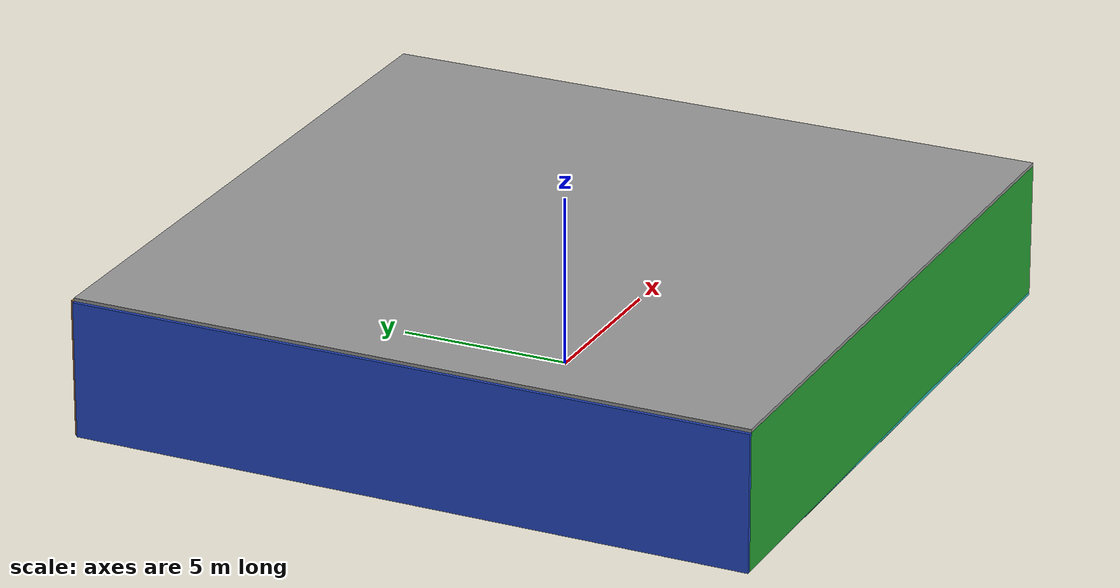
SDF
<sdf version="1.4">
 <world name="default">
  <physics type="ode">
   <max_step_size>0.001</max_step_size>
   <real_time_factor>1</real_time_factor>
   <real_time_update_rate>1000</real_time_update_rate>
   <gravity>0 0 -9.8</gravity>
  </physics>
  <scene><ambient>0.4 0.4 0.4 1</ambient><background>0.7 0.7 0.7 1</background><shadows>1</shadows></scene>
  <model name="Surrounding">
   <static>1</static>
   <link name="Ceiling">
    <collision name="Ceiling_Collision"><geometry><box><size>20 20 0.1</size></box></geometry></collision>
    <visual name="Ceiling_Visual">
     <geometry><box><size>20 20 0.1</size></box></geometry>
     <material>
      <script><uri>file://media/materials/scripts/gazebo.material</uri><name>Gazebo/GreyGradientSky</name></script>
     </material>
    </visual>
    <pose>0 0 4.05 0 0 0</pose>
   </link>
   <link name="Wall_South">
    <collision name="Wall_South_Collision">
     <geometry><box><size>20 0 4</size></box></geometry>
     <pose>0 0 2 0 -0 0</pose>
    </collision>
    <visual name="Wall_South_Visual">
     <pose>0 0 2 0 -0 0</pose>
     <geometry><box><size>20 0 4</size></box></geometry>
     <material>
      <script><uri>file://media/materials/scripts/gazebo.material</uri><name>Gazebo/GreenGlow</name></script>
     </material>
    </visual>
    <velocity_decay><linear>0</linear><angular>0</angular></velocity_decay>
    <pose>0 -10 0 0 -0 0</pose>
   </link>
   <link name="Wall_East">
    <collision name="Wall_21_Collision">
     <geometry><box><size>20 0 4</size></box></geometry>
     <pose>0 0 2 0 -0 0</pose>
    </collision>
    <visual name="Wall_21_Visual">
     <pose>0 0 2 0 -0 0</pose>
     <geometry><box><size>20 0 4</size></box></geometry>
     <material>
      <script><uri>file://media/materials/scripts/gazebo.material</uri><name>Gazebo/Blue</name></script>
     </material>
    </visual>
    <velocity_decay><linear>0</linear><angular>0</angular></velocity_decay>
    <pose>10 0 0 0 -0 1.5708</pose>
   </link>
   <link name="Wall_North">
    <collision name="Wall_22_Collision">
     <geometry><box><size>20 0.2 4</size></box></geometry>
     <pose>0 0 2 0 -0 0</pose>
    </collision>
    <visual name="Wall_22_Visual">
     <pose>0 0 2 0 -0 0</pose>
     <geometry><box><size>20 0.2 4</size></box></geometry>
     <material>
      <script><uri>file://media/materials/scripts/gazebo.material</uri><name>Gazebo/WoodPallet</name></script>
     </material>
    </visual>
    <velocity_decay><linear>0</linear><angular>0</angular></velocity_decay>
    <pose>0 10 0 0 -0 0</pose>
   </link>
   <link name="Wall_West">
    <collision name="Wall_23_Collision">
     <geometry><box><size>20 0.2 4</size></box></geometry>
     <pose>0 0 2 0 -0 0</pose>
    </collision>
    <visual name="Wall_23_Visual">
     <pose>0 0 2 0 -0 0</pose>
     <geometry><box><size>20 0.2 4</size></box></geometry>
     <material>
      <script><uri>file://media/materials/scripts/gazebo.material</uri><name>Gazebo/BlueGlow</name></script>
     </material>
    </visual>
    <velocity_decay><linear>0</linear><angular>0</angular></velocity_decay>
    <pose>-10 0 0 0 0 -1.5708</pose>
   </link>
   <link name="Ground_link">
    <collision name="collision">
     <pose>0 0 .05 0 -0 0</pose>
     <geometry><box><size>20 20 0.1</size></box></geometry>
    </collision>
    <visual name="visual">
     <pose>0 0 .05 0 -0 0</pose>
     <geometry><box><size>20 20 0.1</size></box></geometry>
     <material>
      <script><uri>file://media/materials/scripts/gazebo.material</uri><name>Gazebo/TurquoiseGlow</name></script>
     </material>
    </visual>
   </link>
   <static>1</static>
  </model>
  <spherical_coordinates>
   <surface_model>EARTH_WGS84</surface_model>
   <latitude_deg>0</latitude_deg>
   <longitude_deg>0</longitude_deg>
   <elevation>0</elevation>
   <heading_deg>0</heading_deg>
  </spherical_coordinates>
  <light name="lightball_0" type="diffuse">
   <diffuse>0.8 0.8 0.8 1</diffuse>
   <specular>0.2 0.2 0.2 1</specular>
   <attenuation>
    <range>100</range>
    <constant>0.7</constant>
    <linear>0.01</linear>
    <quadratic>0.001</quadratic>
   </attenuation>
   <direction>-0.5 0.1 -0.9</direction>
   <pose>-1.81086440678 3.21722620242 2.13289346458 0 0 0</pose>
  </light>
  <light name="lightball_1" type="diffuse">
   <diffuse>0.8 0.8 0.8 1</diffuse>
   <specular>0.2 0.2 0.2 1</specular>
   <attenuation>
    <range>100</range>
    <constant>0.7</constant>
    <linear>0.01</linear>
    <quadratic>0.001</quadratic>
   </attenuation>
   <direction>-0.5 0.1 -0.9</direction>
   <pose>-6.85519795519 -5.43416564901 3.74272298076 0 0 0</pose>
  </light>
  <light name="lightball_2" type="diffuse">
   <diffuse>0.8 0.8 0.8 1</diffuse>
   <specular>0.2 0.2 0.2 1</specular>
   <attenuation>
    <range>100</range>
    <constant>0.7</constant>
    <linear>0.01</linear>
    <quadratic>0.001</quadratic>
   </attenuation>
   <direction>-0.5 0.1 -0.9</direction>
   <pose>-9.02405448959 6.94647101885 2.30600248429 0 0 0</pose>
  </light>
  <light name="lightball_3" type="diffuse">
   <diffuse>0.8 0.8 0.8 1</diffuse>
   <specular>0.2 0.2 0.2 1</specular>
   <attenuation>
    <range>100</range>
    <constant>0.7</constant>
    <linear>0.01</linear>
    <quadratic>0.001</quadratic>
   </attenuation>
   <direction>-0.5 0.1 -0.9</direction>
   <pose>9.62567072227 -1.8064295701 2.38755738929 0 0 0</pose>
  </light>
  <light name="lightball_4" type="diffuse">
   <diffuse>0.8 0.8 0.8 1</diffuse>
   <specular>0.2 0.2 0.2 1</specular>
   <attenuation>
    <range>100</range>
    <constant>0.7</constant>
    <linear>0.01</linear>
    <quadratic>0.001</quadratic>
   </attenuation>
   <direction>-0.5 0.1 -0.9</direction>
   <pose>-5.29891268877 -4.68990113153 1.28285189983 0 0 0</pose>
  </light>
  <light name="lightball_5" type="diffuse">
   <diffuse>0.8 0.8 0.8 1</diffuse>
   <specular>0.2 0.2 0.2 1</specular>
   <attenuation>
    <range>100</range>
    <constant>0.7</constant>
    <linear>0.01</linear>
    <quadratic>0.001</quadratic>
   </attenuation>
   <direction>-0.5 0.1 -0.9</direction>
   <pose>1.87205115833 -7.66930197058 1.7202815886 0 0 0</pose>
  </light>
  <light name="lightball_6" type="diffuse">
   <diffuse>0.8 0.8 0.8 1</diffuse>
   <specular>0.2 0.2 0.2 1</specular>
   <attenuation>
    <range>100</range>
    <constant>0.7</constant>
    <linear>0.01</linear>
    <quadratic>0.001</quadratic>
   </attenuation>
   <direction>-0.5 0.1 -0.9</direction>
   <pose>-8.22311197055 -4.26331889203 3.12501708733 0 0 0</pose>
  </light>
  <light name="lightball_7" type="diffuse">
   <diffuse>0.8 0.8 0.8 1</diffuse>
   <specular>0.2 0.2 0.2 1</specular>
   <attenuation>
    <range>100</range>
    <constant>0.7</constant>
    <linear>0.01</linear>
    <quadratic>0.001</quadratic>
   </attenuation>
   <direction>-0.5 0.1 -0.9</direction>
   <pose>1.23354137762 -6.33542467163 0.555508239905 0 0 0</pose>
  </light>
  <light name="lightball_8" type="diffuse">
   <diffuse>0.8 0.8 0.8 1</diffuse>
   <specular>0.2 0.2 0.2 1</specular>
   <attenuation>
    <range>100</range>
    <constant>0.7</constant>
    <linear>0.01</linear>
    <quadratic>0.001</quadratic>
   </attenuation>
   <direction>-0.5 0.1 -0.9</direction>
   <pose>3.067212905 -6.28993190267 0.70779023003 0 0 0</pose>
  </light>
  <light name="lightball_9" type="diffuse">
   <diffuse>0.8 0.8 0.8 1</diffuse>
   <specular>0.2 0.2 0.2 1</specular>
   <attenuation>
    <range>100</range>
    <constant>0.7</constant>
    <linear>0.01</linear>
    <quadratic>0.001</quadratic>
   </attenuation>
   <direction>-0.5 0.1 -0.9</direction>
   <pose>6.23565408389 7.74436849835 2.61463230968 0 0 0</pose>
  </light>
  <light name="lightball_10" type="diffuse">
   <diffuse>0.8 0.8 0.8 1</diffuse>
   <specular>0.2 0.2 0.2 1</specular>
   <attenuation>
    <range>100</range>
    <constant>0.7</constant>
    <linear>0.01</linear>
    <quadratic>0.001</quadratic>
   </attenuation>
   <direction>-0.5 0.1 -0.9</direction>
   <pose>-1.73915084974 -3.41144869019 2.76551716694 0 0 0</pose>
  </light>
  <include><uri>model://cabinet</uri><pose>-8.62262759487 1.72466379363 0 0 0 3.03968397059</pose></include>
  <include><uri>model://cabinet</uri><pose>-3.83742957515 -7.25819143301 0 0 0 3.08558068116</pose></include>
 </world>
</sdf>

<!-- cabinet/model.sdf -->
<sdf version="1.5">
  <model name="cabinet">
    <static>true</static>
    <link name="cabinet_bottom_plate">
      <inertial>
        <pose>0 0 -1 0 0 0</pose>
        <inertia>
          <ixx>2.050000</ixx>
          <ixy>0</ixy>
          <ixz>0</ixz>
          <iyy>2.050000</iyy>
          <iyz>0</iyz>
          <izz>2.050000</izz>
        </inertia>
        <mass>25.000000</mass>
      </inertial>
      <collision name="cabinet_bottom_plate_geom">
        <pose>0 0 0.010000 0 0 0</pose>
        <geometry>
          <box>
            <size>0.450000 0.450000 0.020000</size>
          </box>
        </geometry>
      </collision>
      <visual name="cabinet_bottom_plate_geom_visual">
        <pose>0 0 0.010000 0 0 0</pose>
        <geometry>
          <box>
            <size>0.450000 0.450000 0.020000</size>
          </box>
        </geometry>
        <material>
          <script>
            <uri>model://media/materials/scripts/gazebo.material</uri>
            <name>Gazebo/Wood</name>
          </script>
        </material>
      </visual>
      <collision name="cabinet_bottom_plate_geom_cabinet_back_plate">
        <pose>0.235000 0 0.510000 0 0 0</pose>
        <geometry>
          <box>
            <size>0.020000 0.450000 1.020000</size>
          </box>
        </geometry>
      </collision>
      <visual name="cabinet_bottom_plate_geom_cabinet_back_plate_visual">
        <pose>0.235000 0 0.510000 0 0 0</pose>
        <geometry>
          <box>
            <size>0.020000 0.450000 1.020000</size>
          </box>
        </geometry>
        <material>
          <script>
            <uri>model://media/materials/scripts/gazebo.material</uri>
            <name>Gazebo/Wood</name>
          </script>
        </material>
      </visual>
      <collision name="cabinet_bottom_plate_geom_cabinet_left_plate">
        <pose>0 0.235000 0.510000 0 0 0</pose>
        <geometry>
          <box>
            <size>0.450000 0.020000 1.020000</size>
          </box>
        </geometry>
      </collision>
      <visual name="cabinet_bottom_plate_geom_cabinet_left_plate_visual">
        <pose>0 0.235000 0.510000 0 0 0</pose>
        <geometry>
          <box>
            <size>0.450000 0.020000 1.020000</size>
          </box>
        </geometry>
        <material>
          <script>
            <uri>model://media/materials/scripts/gazebo.material</uri>
            <name>Gazebo/Wood</name>
          </script>
        </material>
      </visual>
      <collision name="cabinet_bottom_plate_geom_cabinet_middle_plate">
        <pose>0 0 0.510000 0 0 0</pose>
        <geometry>
          <box>
            <size>0.450000 0.450000 0.020000</size>
          </box>
        </geometry>
      </collision>
      <visual name="cabinet_bottom_plate_geom_cabinet_middle_plate_visual">
        <pose>0 0 0.510000 0 0 0</pose>
        <geometry>
          <box>
            <size>0.450000 0.450000 0.020000</size>
          </box>
        </geometry>
        <material>
          <script>
            <uri>model://media/materials/scripts/gazebo.material</uri>
            <name>Gazebo/Wood</name>
          </script>
        </material>
      </visual>
      <collision name="cabinet_bottom_plate_geom_cabinet_right_plate">
        <pose>0 -0.235000 0.510000 0 0 0</pose>
        <geometry>
          <box>
            <size>0.450000 0.020000 1.020000</size>
          </box>
        </geometry>
      </collision>
      <visual name="cabinet_bottom_plate_geom_cabinet_right_plate_visual">
        <pose>0 -0.235000 0.510000 0 0 0</pose>
        <geometry>
          <box>
            <size>0.450000 0.020000 1.020000</size>
          </box>
        </geometry>
        <material>
          <script>
            <uri>model://media/materials/scripts/gazebo.material</uri>
            <name>Gazebo/Wood</name>
          </script>
        </material>
      </visual>
      <collision name="cabinet_bottom_plate_geom_cabinet_top_plate">
        <pose>0 0 1.010000 0 0 0</pose>
        <geometry>
          <box>
            <size>0.450000 0.450000 0.020000</size>
          </box>
        </geometry>
      </collision>
      <visual name="cabinet_bottom_plate_geom_cabinet_top_plate_visual">
        <pose>0 0 1.010000 0 0 0</pose>
        <geometry>
          <box>
            <size>0.450000 0.450000 0.020000</size>
          </box>
        </geometry>
        <material>
          <script>
            <uri>model://media/materials/scripts/gazebo.material</uri>
            <name>Gazebo/Wood</name>
          </script>
        </material>
      </visual>
    </link>
  </model>
</sdf>
